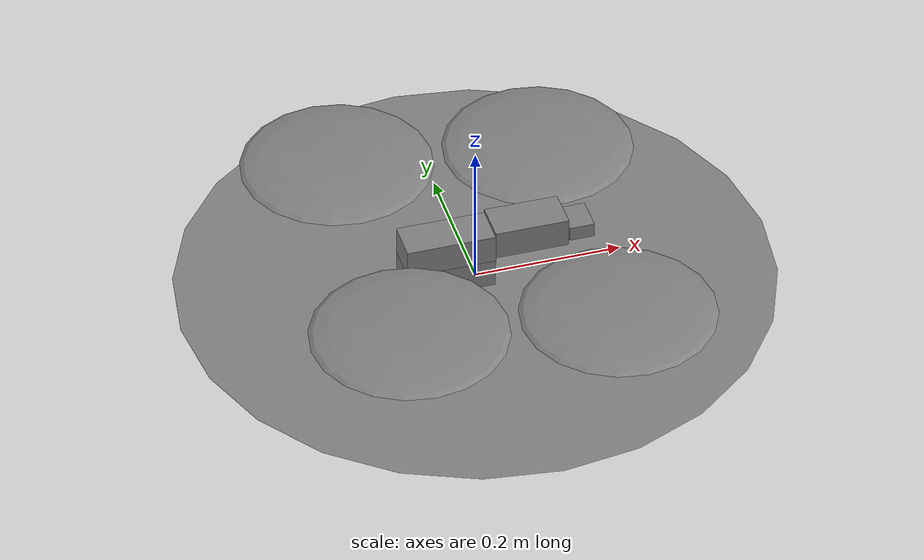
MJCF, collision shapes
<mujoco model="Skydio X2">
  <compiler autolimits="true" assetdir="assets_x2"/>

  <option timestep="0.01" density="1.225" viscosity="1.8e-5"/>

  <default>
    <default class="x2">
        <geom mass="0"/>
        <motor ctrlrange="0 13"/>
        <mesh scale="0.01 0.01 0.01"/>

        <default class="visual">
          <geom group="2" type="mesh" contype="0" conaffinity="0"/>
        </default>

        <default class="collision">
          <geom group="3" type="box"/>
          <default class="rotor">
            <geom type="ellipsoid" size=".13 .13 .01"/>
          </default>
      </default>
      <site group="5"/>
    </default>
  </default>

  <asset>
    <texture type="2d" file="X2_lowpoly_texture_SpinningProps_1024.png"/>
    <material name="phong3SG" texture="X2_lowpoly_texture_SpinningProps_1024"/>
    <material name="invisible" rgba="0 0 0 0"/>

    <mesh class="x2" file="X2_lowpoly.obj"/>
  </asset>

  <worldbody>
    <light name="spotlight" mode="targetbodycom" target="x2" pos="0 -1 2"/>
    <body>
      <geom type="cylinder" size="0.4 0.000001"></geom>
    </body>

    <body name="x2" pos="0 0 0" childclass="x2">
      <freejoint/>

      <camera name="track" pos="-1 0 .5" xyaxes="0 -1 0 1 0 2" mode="trackcom"/>

      <site name="imu" pos="0 0 .02"/>

      <body name="geometry_wrapper" euler="0 0 180">
          <body name="cam_mount" pos="-0.15 -0.01 .07" euler="90 90 0">
            <camera name="drone_camera_l" pos="0 0 0" euler="0 0 0" mode="fixed"/>
            <camera name="drone_camera_r" pos="0.03 0 0" euler="0 0 0" mode="fixed"/>
          </body>
          <geom material="phong3SG" mesh="X2_lowpoly" class="visual" quat="0 0 1 1" mass=".001"/>
          <geom class="collision" size=".06 .027 .02" pos=".04 0 .02"/>
          <geom class="collision" size=".06 .027 .02" pos=".04 0 .06"/>
          <geom class="collision" size=".05 .027 .02" pos="-.07 0 .065"/>
          <geom class="collision" size=".023 .017 .01" pos="-.137 .008 .065" quat="1 0 0 1"/>
      </body>
          <geom name="rotor1" class="rotor" pos=".14 -.18 .05" mass=".25"/>
          <geom name="rotor2" class="rotor" pos=".14 .18 .05" mass=".25"/>
          <geom name="rotor3" class="rotor" pos="-.14 .18 .08" mass=".25"/>
          <geom name="rotor4" class="rotor" pos="-.14 -.18 .08" mass=".25"/>
          <geom size=".16 .04 .02" pos="0 0 0.02" type="ellipsoid" mass=".325" class="visual" material="invisible"/>

          <site name="thrust1" pos=".14 -.18 .05"/>
          <site name="thrust2" pos=".14 .18 .05"/>
          <site name="thrust3" pos="-.14 .18 .08"/>
          <site name="thrust4" pos="-.14 -.18 .08"/>

    </body>
  </worldbody>

  <actuator>
    <motor class="x2" name="thrust1" site="thrust1" gear="0 0 1 0 0 -.0201"/>
    <motor class="x2" name="thrust2" site="thrust2" gear="0 0 1 0 0  .0201"/>
    <motor class="x2" name="thrust3" site="thrust3" gear="0 0 1 0 0 -.0201"/>
    <motor class="x2" name="thrust4" site="thrust4" gear="0 0 1 0 0  .0201"/>
  </actuator>

  <sensor>
    <gyro name="body_angvel" site="imu"/>
    <accelerometer name="body_linacc" site="imu"/>
    <velocimeter name="body_linvel" site="imu"/>
    <magnetometer name="body_mag" site="imu"/>

    <framepos name="global_pos" objtype="site" objname="imu"/>
    <framequat name="global_quat" objtype="site" objname="imu"/>
    <framelinvel name="global_linvel" objtype="site" objname="imu"/>
    ⁠<frameangvel name="global_angvel" objtype="site" objname="imu"/>
    <framelinacc name="global_linacc" objtype="site" objname="imu"/>
    <frameangacc name="global_angacc" objtype="site" objname="imu"/>
  </sensor>

  <keyframe>
    <key name="hover" qpos="0 0 .3 1 0 0 0" ctrl="3.2495625 3.2495625 3.2495625 3.2495625"/>
  </keyframe>
</mujoco>
